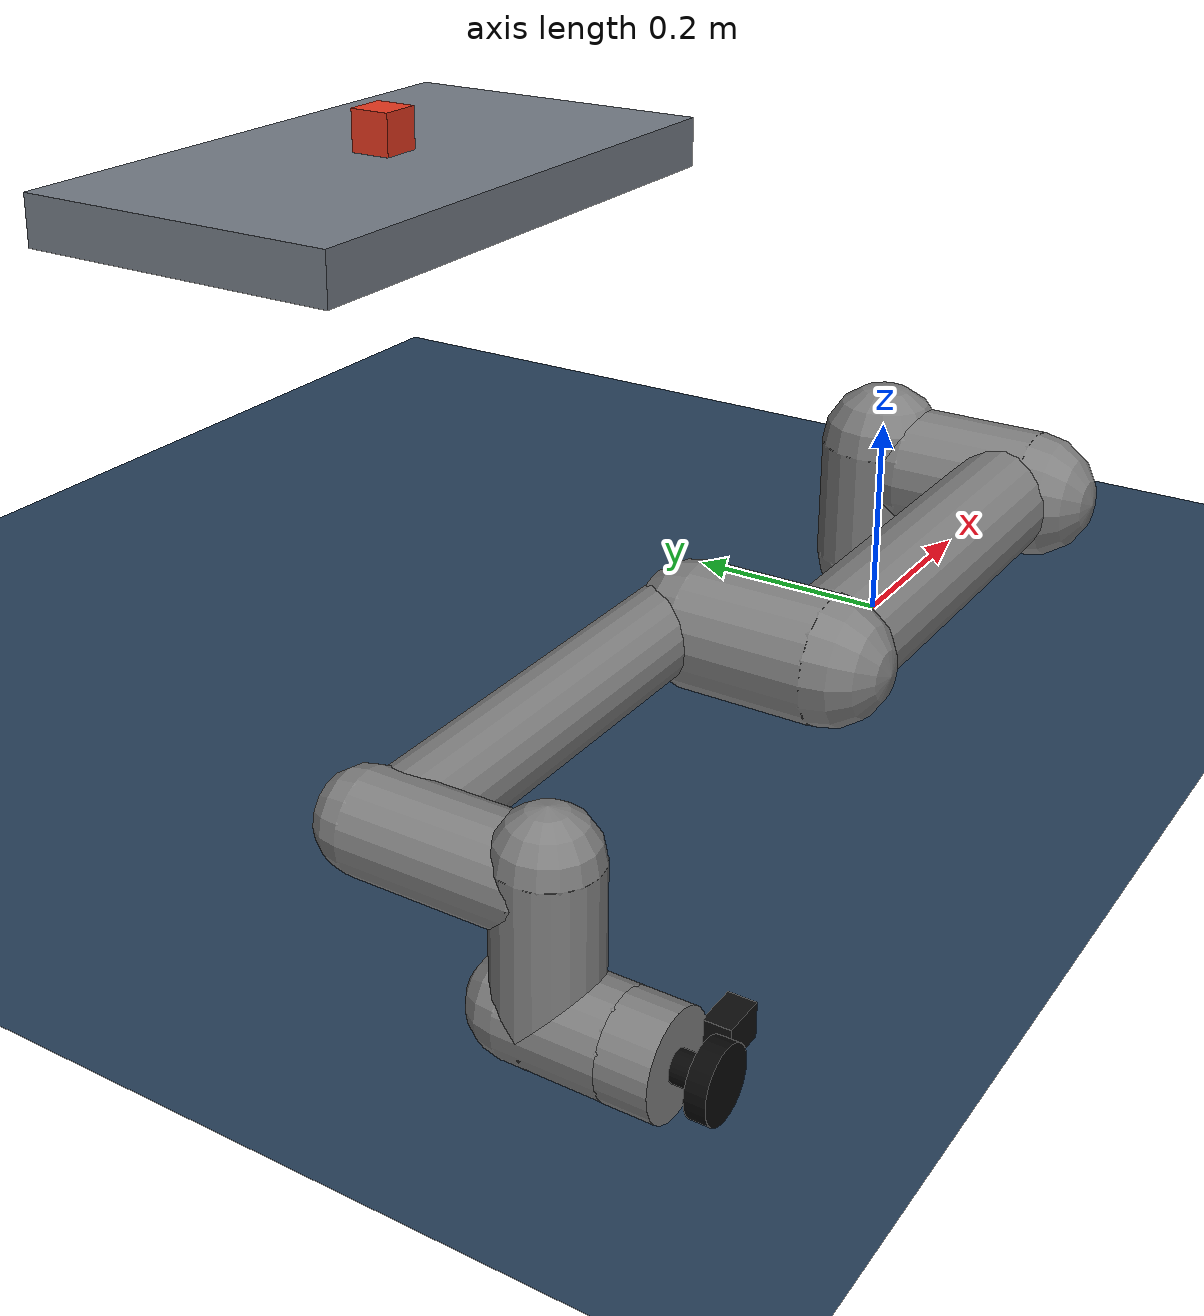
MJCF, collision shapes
<mujoco model="ur5e suction tracking scene">
  <include file="ur5e.xml"/>

  <option gravity="0 0 -9.81"/>

  <visual>
    <headlight diffuse="0.6 0.6 0.6" ambient="0.15 0.15 0.15" specular="0 0 0"/>
    <rgba haze="0.15 0.25 0.35 1"/>
    <global azimuth="120" elevation="-20" offwidth="1280" offheight="720"/>
  </visual>

  <asset>
    <texture type="skybox" builtin="gradient" rgb1="0.3 0.5 0.7" rgb2="0 0 0"
      width="512" height="3072"/>
    <texture type="2d" name="groundplane" builtin="checker" mark="edge"
      rgb1="0.2 0.3 0.4" rgb2="0.1 0.2 0.3" markrgb="0.8 0.8 0.8"
      width="300" height="300"/>
    <material name="groundplane" texture="groundplane" texuniform="true"
      texrepeat="5 5" reflectance="0.2"/>
    <material name="table_mat" rgba="0.45 0.48 0.52 1"/>
    <material name="cube_mat" rgba="0.9 0.22 0.12 1"/>
  </asset>

  <worldbody>
    <light pos="0 0 1.8" dir="0 0 -1" directional="true"/>
    <geom name="floor" size="0 0 0.05" type="plane" material="groundplane"/>

    <!--
      v6 场景布局：桌面前缘从旧版 y=0.25 m 后移到 y=0.42 m，
      防止 upper_arm / shoulder 区域把桌面前缘当作支点。
      台面中心 z=0.37，半厚度 0.03，因此台面高度为 0.40 m。
    -->
    <geom name="table" type="box" pos="0 0.62 0.37" size="0.35 0.20 0.03"
      material="table_mat" friction="0.40 0.02 0.002" contype="1" conaffinity="2"/>

    <!--
      可抓取物块：freejoint 允许其在桌面上运动，并在被吸附后自由抬升。
      训练时建议在 Python reset() 中随机化 x/y，并在 step() 中给它施加水平速度或外力。
    -->
    <body name="cube" pos="0 0.62 0.426">
      <freejoint name="cube_free"/>
      <geom name="cube_geom" type="box" size="0.025 0.025 0.025"
        mass="0.12" material="cube_mat" friction="0.40 0.02 0.002"
        condim="4" contype="2" conaffinity="5"/>
      <site name="cube_center" pos="0 0 0" size="0.006"
        rgba="1 1 0 0.8" group="4"/>
      <site name="cube_top" pos="0 0 0.026" size="0.005"
        rgba="0 0.8 1 0.8" group="4"/>
    </body>

    <!-- 固定全局相机仅用于调试/录像，不作为必须的 RL 观测 -->
    <camera name="overview_camera" pos="1.0 0.45 1.4"
      xyaxes="0 1 0 -0.7 0 0.7" fovy="55" resolution="640 480"/>
  </worldbody>

  <sensor>
    <!-- 吸盘是否已经发生有效接触 -->
    <touch name="suction_contact" site="suction_touch_site"/>

    <!--
      末端相机中的方块中心像素坐标 (u, v)。
      可先作为低维视觉观测训练，无需一开始就训练 CNN。
    -->
    <camprojection name="cube_pixel" site="cube_center" camera="eef_camera"/>

    <!--
      方块中心在末端相机坐标系中的三维位置。
      相机前方通常对应负 z，因此可用 -z 作为近似深度。
    -->
    <framepos name="cube_in_camera" objtype="site" objname="cube_center"
      reftype="camera" refname="eef_camera"/>

    <!-- 吸盘到方块顶部的相对位置，适合用于 dense reward / curriculum -->
    <framepos name="cube_top_in_suction" objtype="site" objname="cube_top"
      reftype="site" refname="suction_site"/>

    <!-- 方块世界坐标速度：用于移动目标追踪和截获策略 -->
    <framelinvel name="cube_velocity" objtype="body" objname="cube"/>
  </sensor>

  <!--
    v6 home 状态：吸盘约位于工作区上方 x=0,y=0.58,z=0.62；后 7 个为 cube freejoint
    [x y z qw qx qy qz]。
    ctrl 前 6 个为关节目标，第 7 个为 suction，默认关闭。
  -->
  <keyframe>
    <key name="home"
      qpos="-1.80393646 -1.28628838 0.79165883 -1.07617120 -1.57079905 -0.23313646  0 0.62 0.426 1 0 0 0"
      ctrl="-1.80393646 -1.28628838 0.79165883 -1.07617120 -1.57079905 -0.23313646  0"/>
  </keyframe>
</mujoco>

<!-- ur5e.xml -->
<mujoco model="ur5e_suction_camera">
  <!-- 基于 MuJoCo Menagerie UR5e，增加末端相机与真空吸附执行器 -->
  <compiler angle="radian" meshdir="assets" autolimits="true"/>

  <option integrator="implicitfast" timestep="0.002"/>

  <default>
    <default class="ur5e">
      <material specular="0.5" shininess="0.25"/>
      <joint axis="0 1 0" range="-6.28319 6.28319" armature="0.1"/>
      <general gaintype="fixed" biastype="affine" ctrlrange="-6.2831 6.2831"
        gainprm="2000" biasprm="0 -2000 -400" forcerange="-150 150"/>

      <default class="size3">
        <default class="size3_limited">
          <joint range="-3.1415 3.1415"/>
          <general ctrlrange="-3.1415 3.1415"/>
        </default>
      </default>

      <default class="size1">
        <general gainprm="500" biasprm="0 -500 -100" forcerange="-28 28"/>
      </default>

      <default class="visual">
        <geom type="mesh" contype="0" conaffinity="0" group="2"/>
      </default>

      <default class="collision">
        <geom type="capsule" group="3"/>
        <default class="eef_collision">
          <geom type="cylinder"/>
        </default>
      </default>

      <site size="0.001" rgba="0.5 0.5 0.5 0.3" group="4"/>
    </default>
  </default>

  <asset>
    <material class="ur5e" name="black" rgba="0.033 0.033 0.033 1"/>
    <material class="ur5e" name="jointgray" rgba="0.278 0.278 0.278 1"/>
    <material class="ur5e" name="linkgray" rgba="0.82 0.82 0.82 1"/>
    <material class="ur5e" name="urblue" rgba="0.49 0.678 0.8 1"/>
    <material name="suction_black" rgba="0.03 0.03 0.03 1"/>
    <material name="camera_black" rgba="0.05 0.05 0.05 1"/>

    <mesh file="base_0.obj"/>
    <mesh file="base_1.obj"/>
    <mesh file="shoulder_0.obj"/>
    <mesh file="shoulder_1.obj"/>
    <mesh file="shoulder_2.obj"/>
    <mesh file="upperarm_0.obj"/>
    <mesh file="upperarm_1.obj"/>
    <mesh file="upperarm_2.obj"/>
    <mesh file="upperarm_3.obj"/>
    <mesh file="forearm_0.obj"/>
    <mesh file="forearm_1.obj"/>
    <mesh file="forearm_2.obj"/>
    <mesh file="forearm_3.obj"/>
    <mesh file="wrist1_0.obj"/>
    <mesh file="wrist1_1.obj"/>
    <mesh file="wrist1_2.obj"/>
    <mesh file="wrist2_0.obj"/>
    <mesh file="wrist2_1.obj"/>
    <mesh file="wrist2_2.obj"/>
    <mesh file="wrist3.obj"/>
  </asset>

  <worldbody>
    <light name="spotlight" mode="targetbodycom" target="wrist_2_link" pos="0 -1 2"/>

    <body name="base" quat="0 0 0 -1" childclass="ur5e">
      <inertial mass="4.0" pos="0 0 0" diaginertia="0.00443333156 0.00443333156 0.0072"/>
      <geom mesh="base_0" material="black" class="visual"/>
      <geom mesh="base_1" material="jointgray" class="visual"/>

      <body name="shoulder_link" pos="0 0 0.163">
        <inertial mass="3.7" pos="0 0 0" diaginertia="0.0102675 0.0102675 0.00666"/>
        <joint name="shoulder_pan_joint" class="size3" axis="0 0 1"/>
        <geom mesh="shoulder_0" material="urblue" class="visual"/>
        <geom mesh="shoulder_1" material="black" class="visual"/>
        <geom mesh="shoulder_2" material="jointgray" class="visual"/>
        <geom class="collision" size="0.06 0.06" pos="0 0 -0.04"/>

        <body name="upper_arm_link" pos="0 0.138 0" quat="1 0 1 0">
          <inertial mass="8.393" pos="0 0 0.2125" diaginertia="0.133886 0.133886 0.0151074"/>
          <joint name="shoulder_lift_joint" class="size3"/>
          <geom mesh="upperarm_0" material="linkgray" class="visual"/>
          <geom mesh="upperarm_1" material="black" class="visual"/>
          <geom mesh="upperarm_2" material="jointgray" class="visual"/>
          <geom mesh="upperarm_3" material="urblue" class="visual"/>
          <geom class="collision" pos="0 -0.04 0" quat="1 1 0 0" size="0.06 0.06"/>
          <geom class="collision" size="0.05 0.2" pos="0 0 0.2"/>

          <body name="forearm_link" pos="0 -0.131 0.425">
            <inertial mass="2.275" pos="0 0 0.196" diaginertia="0.0311796 0.0311796 0.004095"/>
            <joint name="elbow_joint" class="size3_limited"/>
            <geom mesh="forearm_0" material="urblue" class="visual"/>
            <geom mesh="forearm_1" material="linkgray" class="visual"/>
            <geom mesh="forearm_2" material="black" class="visual"/>
            <geom mesh="forearm_3" material="jointgray" class="visual"/>
            <geom class="collision" pos="0 0.08 0" quat="1 1 0 0" size="0.055 0.06"/>
            <geom class="collision" size="0.038 0.19" pos="0 0 0.2"/>

            <body name="wrist_1_link" pos="0 0 0.392" quat="1 0 1 0">
              <inertial mass="1.219" pos="0 0.127 0" diaginertia="0.0025599 0.0025599 0.0021942"/>
              <joint name="wrist_1_joint" class="size1"/>
              <geom mesh="wrist1_0" material="black" class="visual"/>
              <geom mesh="wrist1_1" material="urblue" class="visual"/>
              <geom mesh="wrist1_2" material="jointgray" class="visual"/>
              <geom class="collision" pos="0 0.05 0" quat="1 1 0 0" size="0.04 0.07"/>

              <body name="wrist_2_link" pos="0 0.127 0">
                <inertial mass="1.219" pos="0 0 0.1" diaginertia="0.0025599 0.0025599 0.0021942"/>
                <joint name="wrist_2_joint" axis="0 0 1" class="size1"/>
                <geom mesh="wrist2_0" material="black" class="visual"/>
                <geom mesh="wrist2_1" material="urblue" class="visual"/>
                <geom mesh="wrist2_2" material="jointgray" class="visual"/>
                <geom class="collision" size="0.04 0.06" pos="0 0 0.04"/>
                <geom class="collision" pos="0 0.02 0.1" quat="1 1 0 0" size="0.04 0.04"/>

                <body name="wrist_3_link" pos="0 0 0.1">
                  <inertial mass="0.1889" pos="0 0.0771683 0" quat="1 0 0 1"
                    diaginertia="0.000132134 9.90863e-05 9.90863e-05"/>
                  <joint name="wrist_3_joint" class="size1"/>
                  <geom material="linkgray" mesh="wrist3" class="visual"/>
                  <geom class="eef_collision" pos="0 0.08 0" quat="1 1 0 0" size="0.04 0.02"/>
                  <site name="attachment_site" pos="0 0.1 0" quat="-1 1 0 0"/>

                  <!--
                    工具坐标系沿用原 attachment_site：在 home 姿态下 +Z 轴大致朝向世界 -Z，
                    因此吸盘沿工具 +Z 方向伸出，适合从方块上方向下抓取。
                  -->
                  <body name="suction_tool" pos="0 0.1 0" quat="-1 1 0 0">
                    <!-- 工具质量取小值，避免显著改变 UR5e 动力学 -->
                    <inertial mass="0.18" pos="0 0 0.018" diaginertia="0.00012 0.00012 0.00008"/>

                    <!-- 吸盘连接座，仅视觉显示，不参与碰撞 -->
                    <geom name="suction_mount" type="cylinder" pos="0 0 0.012" size="0.012 0.012"
                      material="suction_black" contype="0" conaffinity="0" group="2"/>

                    <!--
                      真正参与接触和 adhesion 的吸盘面。
                      margin/gap 允许在数毫米范围内建立接触候选，使吸附更接近真空吸盘。
                    -->
                    <geom name="suction_pad" type="cylinder" pos="0 0 0.028" size="0.028 0.008"
                      material="suction_black" friction="1.5 0.03 0.005" condim="4"
                      contype="4" conaffinity="2" margin="0.004" gap="0.003"
                      solref="0.004 1" solimp="0.95 0.99 0.001"/>

                    <!-- 吸盘中心：IK、距离奖励和成功判定建议使用该 site -->
                    <site name="suction_site" pos="0 0 0.037" size="0.006"
                      rgba="0.1 1 0.1 0.7" group="4"/>

                    <!-- 触觉传感区域，用于判断是否已经贴到物块表面 -->
                    <site name="suction_touch_site" type="cylinder" pos="0 0 0.035"
                      size="0.029 0.004" rgba="0 1 0 0.12" group="4"/>

                    <!-- 末端相机外壳，仅用于可视化 -->
                    <geom name="eef_camera_body" type="box" pos="0.052 0 0.010" size="0.018 0.014 0.011"
                      material="camera_black" contype="0" conaffinity="0" group="2"/>

                    <!--
                      MuJoCo 相机默认沿相机局部 -Z 看。
                      这里将相机 Y 轴反向，使视线沿工具 +Z，即朝向吸盘下方。
                    -->
                    <camera name="eef_camera" pos="0.052 0 0.012"
                      xyaxes="1 0 0 0 -1 0" fovy="90" resolution="320 240"/>
                  </body>
                </body>
              </body>
            </body>
          </body>
        </body>
      </body>
    </body>
  </worldbody>

  <actuator>
    <!-- UR5e 六关节位置控制器 -->
    <general class="size3" name="shoulder_pan" joint="shoulder_pan_joint"/>
    <general class="size3" name="shoulder_lift" joint="shoulder_lift_joint"/>
    <general class="size3_limited" name="elbow" joint="elbow_joint"/>
    <general class="size1" name="wrist_1" joint="wrist_1_joint"/>
    <general class="size1" name="wrist_2" joint="wrist_2_joint"/>
    <general class="size1" name="wrist_3" joint="wrist_3_joint"/>

    <!--
      真空吸附控制：ctrl=0 关闭；ctrl=1 最大吸附。
      v6 使用 30 N 最大吸附力；对 0.12 kg 方块有充足余量，同时保持接触物理稳定。
    -->
    <adhesion name="suction" body="suction_tool" ctrlrange="0 1" gain="30"/>
  </actuator>

  <!--
    这里不再定义 keyframe。
    因为 scene.xml 会额外加入自由方块，qpos 维度会改变；
    将完整 keyframe 放到 scene.xml 可避免维度不匹配。
  -->
</mujoco>
